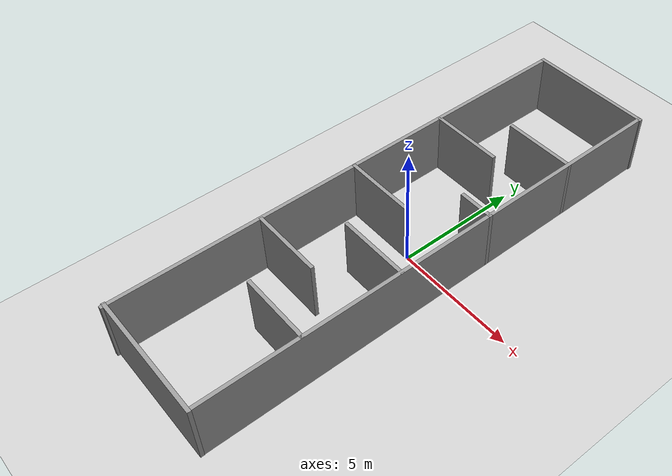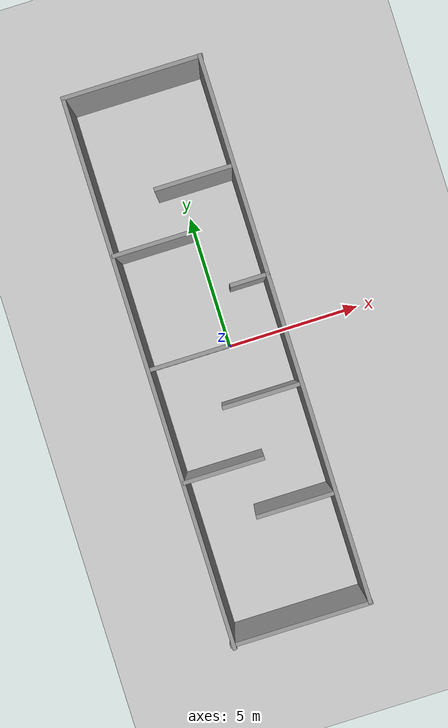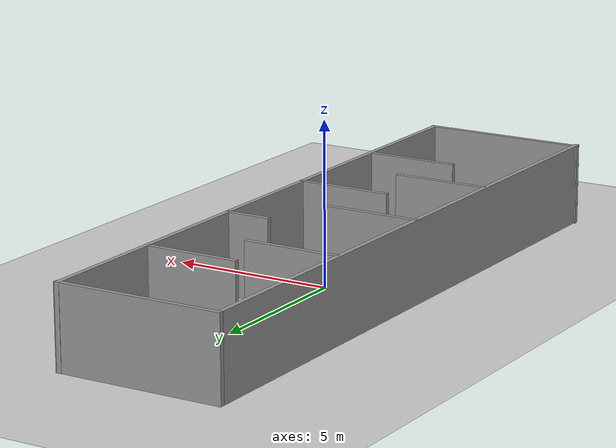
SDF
<sdf version="1.6">
 <world name="default">
  <light name="sun" type="directional">
   <pose>0 0 10 0 -0 0</pose>
   <diffuse>0.8 0.8 0.8 1</diffuse>
   <specular>0.1 0.1 0.1 1</specular>
   <attenuation>
    <range>1000</range>
    <constant>0.9</constant>
    <linear>0.01</linear>
    <quadratic>0.001</quadratic>
   </attenuation>
   <direction>-0.5 0.5 -1</direction>
  </light>
  <model name="ground_plane">
   <static>1</static>
   <link name="link">
    <collision name="collision">
     <geometry><plane><normal>0 0 1</normal><size>100 100</size></plane></geometry>
     <surface><friction><ode><mu>100</mu><mu2>50</mu2></ode></friction></surface>
    </collision>
    <visual name="visual">
     <cast_shadows>0</cast_shadows>
     <geometry><plane><normal>0 0 1</normal><size>100 100</size></plane></geometry>
     <material>
      <script><uri>file://media/materials/scripts/gazebo.material</uri><name>Gazebo/Grey</name></script>
     </material>
    </visual>
   </link>
  </model>
  <gravity>0 0 -9.8</gravity>
  <magnetic_field>6e-06 2.3e-05 -4.2e-05</magnetic_field>
  <atmosphere type="adiabatic"/>
  <physics name="default_physics" default="0" type="ode">
   <max_step_size>0.001</max_step_size>
   <real_time_factor>1</real_time_factor>
   <real_time_update_rate>1000</real_time_update_rate>
  </physics>
  <scene><ambient>0.4 0.4 0.4 1</ambient><background>0.7 0.7 0.7 1</background><shadows>1</shadows></scene>
  <spherical_coordinates>
   <surface_model>EARTH_WGS84</surface_model>
   <latitude_deg>0</latitude_deg>
   <longitude_deg>0</longitude_deg>
   <elevation>0</elevation>
   <heading_deg>0</heading_deg>
  </spherical_coordinates>
  <model name="Worst_Case_Communications">
   <link name="Wall_0">
    <pose>2 0 0 0 -0 1.5708</pose>
    <visual name="Wall_0_Visual">
     <pose>0 0 1.25 0 -0 0</pose>
     <geometry><box><size>20.15 0.15 2.5</size></box></geometry>
     <material>
      <script><uri>file://media/materials/scripts/gazebo.material</uri><name>Gazebo/Grey</name></script>
      <ambient>1 1 1 1</ambient>
      <shader type="pixel"/>
      <diffuse>0.7 0.7 0.7 1</diffuse>
      <specular>0.01 0.01 0.01 1</specular>
      <emissive>0 0 0 1</emissive>
     </material>
    </visual>
    <collision name="Wall_0_Collision">
     <pose>0 0 1.25 0 -0 0</pose>
     <geometry><box><size>20.15 0.15 2.5</size></box></geometry>
     <surface>
      <friction>
       <ode><mu>1</mu><mu2>1</mu2><fdir1>0 0 0</fdir1><slip1>0</slip1><slip2>0</slip2></ode>
       <torsional>
        <coefficient>1</coefficient>
        <patch_radius>0</patch_radius>
        <surface_radius>0</surface_radius>
        <use_patch_radius>1</use_patch_radius>
        <ode><slip>0</slip></ode>
       </torsional>
      </friction>
      <bounce><restitution_coefficient>0</restitution_coefficient><threshold>1e+06</threshold></bounce>
      <contact>
       <collide_without_contact>0</collide_without_contact>
       <collide_without_contact_bitmask>1</collide_without_contact_bitmask>
       <collide_bitmask>1</collide_bitmask>
       <ode>
        <soft_cfm>0</soft_cfm>
        <soft_erp>0.2</soft_erp>
        <kp>1e+13</kp>
        <kd>1</kd>
        <max_vel>0.01</max_vel>
        <min_depth>0</min_depth>
       </ode>
       <bullet>
        <split_impulse>1</split_impulse>
        <split_impulse_penetration_threshold>-0.01</split_impulse_penetration_threshold>
        <soft_cfm>0</soft_cfm>
        <soft_erp>0.2</soft_erp>
        <kp>1e+13</kp>
        <kd>1</kd>
       </bullet>
      </contact>
     </surface>
    </collision>
   </link>
   <link name="Wall_10">
    <pose>-1.52536 -4.10122 0 0 -0 0</pose>
    <visual name="Wall_10_Visual">
     <pose>0 0 1.25 0 -0 0</pose>
     <geometry><box><size>3 0.15 2.5</size></box></geometry>
     <material>
      <script><uri>file://media/materials/scripts/gazebo.material</uri><name>Gazebo/Grey</name></script>
      <ambient>1 1 1 1</ambient>
      <shader type="pixel"/>
      <diffuse>0.7 0.7 0.7 1</diffuse>
      <specular>0.01 0.01 0.01 1</specular>
      <emissive>0 0 0 1</emissive>
     </material>
    </visual>
    <collision name="Wall_10_Collision">
     <pose>0 0 1.25 0 -0 0</pose>
     <geometry><box><size>3 0.15 2.5</size></box></geometry>
     <surface>
      <friction>
       <ode><mu>1</mu><mu2>1</mu2><fdir1>0 0 0</fdir1><slip1>0</slip1><slip2>0</slip2></ode>
       <torsional>
        <coefficient>1</coefficient>
        <patch_radius>0</patch_radius>
        <surface_radius>0</surface_radius>
        <use_patch_radius>1</use_patch_radius>
        <ode><slip>0</slip></ode>
       </torsional>
      </friction>
      <bounce><restitution_coefficient>0</restitution_coefficient><threshold>1e+06</threshold></bounce>
      <contact>
       <collide_without_contact>0</collide_without_contact>
       <collide_without_contact_bitmask>1</collide_without_contact_bitmask>
       <collide_bitmask>1</collide_bitmask>
       <ode>
        <soft_cfm>0</soft_cfm>
        <soft_erp>0.2</soft_erp>
        <kp>1e+13</kp>
        <kd>1</kd>
        <max_vel>0.01</max_vel>
        <min_depth>0</min_depth>
       </ode>
       <bullet>
        <split_impulse>1</split_impulse>
        <split_impulse_penetration_threshold>-0.01</split_impulse_penetration_threshold>
        <soft_cfm>0</soft_cfm>
        <soft_erp>0.2</soft_erp>
        <kp>1e+13</kp>
        <kd>1</kd>
       </bullet>
      </contact>
     </surface>
    </collision>
   </link>
   <link name="Wall_12">
    <pose>1.34347 2.00793 0 0 -0 3.14159</pose>
    <inertial>
     <inertia><ixx>0</ixx><ixy>0</ixy><ixz>0</ixz><iyy>0</iyy><iyz>0</iyz><izz>0</izz></inertia>
     <mass>0</mass>
    </inertial>
    <visual name="Wall_12_Visual">
     <pose>0 0 1.25 0 -0 0</pose>
     <geometry><box><size>1.46432 0.15 2.5</size></box></geometry>
     <material>
      <script><uri>file://media/materials/scripts/gazebo.material</uri><name>Gazebo/Grey</name></script>
      <ambient>1 1 1 1</ambient>
      <shader type="pixel"/>
      <diffuse>0.7 0.7 0.7 1</diffuse>
      <specular>0.01 0.01 0.01 1</specular>
      <emissive>0 0 0 1</emissive>
     </material>
    </visual>
    <collision name="Wall_12_Collision">
     <pose>0 0 1.25 0 -0 0</pose>
     <geometry><box><size>1.46432 0.15 2.5</size></box></geometry>
     <surface>
      <friction>
       <ode><mu>1</mu><mu2>1</mu2><fdir1>0 0 0</fdir1><slip1>0</slip1><slip2>0</slip2></ode>
       <torsional>
        <coefficient>1</coefficient>
        <patch_radius>0</patch_radius>
        <surface_radius>0</surface_radius>
        <use_patch_radius>1</use_patch_radius>
        <ode><slip>0</slip></ode>
       </torsional>
      </friction>
      <bounce><restitution_coefficient>0</restitution_coefficient><threshold>1e+06</threshold></bounce>
      <contact>
       <collide_without_contact>0</collide_without_contact>
       <collide_without_contact_bitmask>1</collide_without_contact_bitmask>
       <collide_bitmask>1</collide_bitmask>
       <ode>
        <soft_cfm>0</soft_cfm>
        <soft_erp>0.2</soft_erp>
        <kp>1e+13</kp>
        <kd>1</kd>
        <max_vel>0.01</max_vel>
        <min_depth>0</min_depth>
       </ode>
       <bullet>
        <split_impulse>1</split_impulse>
        <split_impulse_penetration_threshold>-0.01</split_impulse_penetration_threshold>
        <soft_cfm>0</soft_cfm>
        <soft_erp>0.2</soft_erp>
        <kp>1e+13</kp>
        <kd>1</kd>
       </bullet>
      </contact>
     </surface>
    </collision>
   </link>
   <link name="Wall_14">
    <pose>-1.52951 4.20523 0 0 -0 0</pose>
    <visual name="Wall_14_Visual">
     <pose>0 0 1.25 0 -0 0</pose>
     <geometry><box><size>3 0.15 2.5</size></box></geometry>
     <material>
      <script><uri>file://media/materials/scripts/gazebo.material</uri><name>Gazebo/Grey</name></script>
      <ambient>1 1 1 1</ambient>
      <shader type="pixel"/>
      <diffuse>0.7 0.7 0.7 1</diffuse>
      <specular>0.01 0.01 0.01 1</specular>
      <emissive>0 0 0 1</emissive>
     </material>
    </visual>
    <collision name="Wall_14_Collision">
     <pose>0 0 1.25 0 -0 0</pose>
     <geometry><box><size>3 0.15 2.5</size></box></geometry>
     <surface>
      <friction>
       <ode><mu>1</mu><mu2>1</mu2><fdir1>0 0 0</fdir1><slip1>0</slip1><slip2>0</slip2></ode>
       <torsional>
        <coefficient>1</coefficient>
        <patch_radius>0</patch_radius>
        <surface_radius>0</surface_radius>
        <use_patch_radius>1</use_patch_radius>
        <ode><slip>0</slip></ode>
       </torsional>
      </friction>
      <bounce><restitution_coefficient>0</restitution_coefficient><threshold>1e+06</threshold></bounce>
      <contact>
       <collide_without_contact>0</collide_without_contact>
       <collide_without_contact_bitmask>1</collide_without_contact_bitmask>
       <collide_bitmask>1</collide_bitmask>
       <ode>
        <soft_cfm>0</soft_cfm>
        <soft_erp>0.2</soft_erp>
        <kp>1e+13</kp>
        <kd>1</kd>
        <max_vel>0.01</max_vel>
        <min_depth>0</min_depth>
       </ode>
       <bullet>
        <split_impulse>1</split_impulse>
        <split_impulse_penetration_threshold>-0.01</split_impulse_penetration_threshold>
        <soft_cfm>0</soft_cfm>
        <soft_erp>0.2</soft_erp>
        <kp>1e+13</kp>
        <kd>1</kd>
       </bullet>
      </contact>
     </surface>
    </collision>
   </link>
   <link name="Wall_2">
    <pose>-3.01299 -0.134804 0 0 -0 1.5708</pose>
    <visual name="Wall_2_Visual">
     <pose>0 0 1.25 0 -0 0</pose>
     <geometry><box><size>20.15 0.15 2.5</size></box></geometry>
     <material>
      <script><uri>file://media/materials/scripts/gazebo.material</uri><name>Gazebo/Grey</name></script>
      <ambient>1 1 1 1</ambient>
      <shader type="pixel"/>
      <diffuse>0.7 0.7 0.7 1</diffuse>
      <specular>0.01 0.01 0.01 1</specular>
      <emissive>0 0 0 1</emissive>
     </material>
    </visual>
    <collision name="Wall_2_Collision">
     <pose>0 0 1.25 0 -0 0</pose>
     <geometry><box><size>20.15 0.15 2.5</size></box></geometry>
     <surface>
      <friction>
       <ode><mu>1</mu><mu2>1</mu2><fdir1>0 0 0</fdir1><slip1>0</slip1><slip2>0</slip2></ode>
       <torsional>
        <coefficient>1</coefficient>
        <patch_radius>0</patch_radius>
        <surface_radius>0</surface_radius>
        <use_patch_radius>1</use_patch_radius>
        <ode><slip>0</slip></ode>
       </torsional>
      </friction>
      <bounce><restitution_coefficient>0</restitution_coefficient><threshold>1e+06</threshold></bounce>
      <contact>
       <collide_without_contact>0</collide_without_contact>
       <collide_without_contact_bitmask>1</collide_without_contact_bitmask>
       <collide_bitmask>1</collide_bitmask>
       <ode>
        <soft_cfm>0</soft_cfm>
        <soft_erp>0.2</soft_erp>
        <kp>1e+13</kp>
        <kd>1</kd>
        <max_vel>0.01</max_vel>
        <min_depth>0</min_depth>
       </ode>
       <bullet>
        <split_impulse>1</split_impulse>
        <split_impulse_penetration_threshold>-0.01</split_impulse_penetration_threshold>
        <soft_cfm>0</soft_cfm>
        <soft_erp>0.2</soft_erp>
        <kp>1e+13</kp>
        <kd>1</kd>
       </bullet>
      </contact>
     </surface>
    </collision>
   </link>
   <link name="Wall_27">
    <pose>0.575 6 0 0 -0 3.14159</pose>
    <visual name="Wall_27_Visual">
     <pose>0 0 1.25 0 -0 0</pose>
     <geometry><box><size>3 0.15 2.5</size></box></geometry>
     <material>
      <script><uri>file://media/materials/scripts/gazebo.material</uri><name>Gazebo/Grey</name></script>
      <ambient>1 1 1 1</ambient>
      <shader type="pixel"/>
      <diffuse>0.7 0.7 0.7 1</diffuse>
      <specular>0.01 0.01 0.01 1</specular>
      <emissive>0 0 0 1</emissive>
     </material>
    </visual>
    <collision name="Wall_27_Collision">
     <pose>0 0 1.25 0 -0 0</pose>
     <geometry><box><size>3 0.15 2.5</size></box></geometry>
     <surface>
      <friction>
       <ode><mu>1</mu><mu2>1</mu2><fdir1>0 0 0</fdir1><slip1>0</slip1><slip2>0</slip2></ode>
       <torsional>
        <coefficient>1</coefficient>
        <patch_radius>0</patch_radius>
        <surface_radius>0</surface_radius>
        <use_patch_radius>1</use_patch_radius>
        <ode><slip>0</slip></ode>
       </torsional>
      </friction>
      <bounce><restitution_coefficient>0</restitution_coefficient><threshold>1e+06</threshold></bounce>
      <contact>
       <collide_without_contact>0</collide_without_contact>
       <collide_without_contact_bitmask>1</collide_without_contact_bitmask>
       <collide_bitmask>1</collide_bitmask>
       <ode>
        <soft_cfm>0</soft_cfm>
        <soft_erp>0.2</soft_erp>
        <kp>1e+13</kp>
        <kd>1</kd>
        <max_vel>0.01</max_vel>
        <min_depth>0</min_depth>
       </ode>
       <bullet>
        <split_impulse>1</split_impulse>
        <split_impulse_penetration_threshold>-0.01</split_impulse_penetration_threshold>
        <soft_cfm>0</soft_cfm>
        <soft_erp>0.2</soft_erp>
        <kp>1e+13</kp>
        <kd>1</kd>
       </bullet>
      </contact>
     </surface>
    </collision>
   </link>
   <link name="Wall_29">
    <pose>0.575 -6 0 0 -0 3.14159</pose>
    <visual name="Wall_29_Visual">
     <pose>0 0 1.25 0 -0 0</pose>
     <geometry><box><size>3 0.15 2.5</size></box></geometry>
     <material>
      <script><uri>file://media/materials/scripts/gazebo.material</uri><name>Gazebo/Grey</name></script>
      <ambient>1 1 1 1</ambient>
      <shader type="pixel"/>
      <diffuse>0.7 0.7 0.7 1</diffuse>
      <specular>0.01 0.01 0.01 1</specular>
      <emissive>0 0 0 1</emissive>
     </material>
    </visual>
    <collision name="Wall_29_Collision">
     <pose>0 0 1.25 0 -0 0</pose>
     <geometry><box><size>3 0.15 2.5</size></box></geometry>
     <surface>
      <friction>
       <ode><mu>1</mu><mu2>1</mu2><fdir1>0 0 0</fdir1><slip1>0</slip1><slip2>0</slip2></ode>
       <torsional>
        <coefficient>1</coefficient>
        <patch_radius>0</patch_radius>
        <surface_radius>0</surface_radius>
        <use_patch_radius>1</use_patch_radius>
        <ode><slip>0</slip></ode>
       </torsional>
      </friction>
      <bounce><restitution_coefficient>0</restitution_coefficient><threshold>1e+06</threshold></bounce>
      <contact>
       <collide_without_contact>0</collide_without_contact>
       <collide_without_contact_bitmask>1</collide_without_contact_bitmask>
       <collide_bitmask>1</collide_bitmask>
       <ode>
        <soft_cfm>0</soft_cfm>
        <soft_erp>0.2</soft_erp>
        <kp>1e+13</kp>
        <kd>1</kd>
        <max_vel>0.01</max_vel>
        <min_depth>0</min_depth>
       </ode>
       <bullet>
        <split_impulse>1</split_impulse>
        <split_impulse_penetration_threshold>-0.01</split_impulse_penetration_threshold>
        <soft_cfm>0</soft_cfm>
        <soft_erp>0.2</soft_erp>
        <kp>1e+13</kp>
        <kd>1</kd>
       </bullet>
      </contact>
     </surface>
    </collision>
   </link>
   <link name="Wall_31">
    <pose>-0.520813 -10.0353 0 0 -0 0</pose>
    <inertial>
     <inertia><ixx>0</ixx><ixy>0</ixy><ixz>0</ixz><iyy>0</iyy><iyz>0</iyz><izz>0</izz></inertia>
     <mass>0</mass>
    </inertial>
    <visual name="Wall_31_Visual">
     <pose>0 0 1.25 0 -0 0</pose>
     <geometry><box><size>5.22429 0.15 2.5</size></box></geometry>
     <material>
      <script><uri>file://media/materials/scripts/gazebo.material</uri><name>Gazebo/Grey</name></script>
      <ambient>1 1 1 1</ambient>
      <shader type="pixel"/>
      <diffuse>0.7 0.7 0.7 1</diffuse>
      <specular>0.01 0.01 0.01 1</specular>
      <emissive>0 0 0 1</emissive>
     </material>
    </visual>
    <collision name="Wall_31_Collision">
     <pose>0 0 1.25 0 -0 0</pose>
     <geometry><box><size>5.22429 0.15 2.5</size></box></geometry>
     <surface>
      <friction>
       <ode><mu>1</mu><mu2>1</mu2><fdir1>0 0 0</fdir1><slip1>0</slip1><slip2>0</slip2></ode>
       <torsional>
        <coefficient>1</coefficient>
        <patch_radius>0</patch_radius>
        <surface_radius>0</surface_radius>
        <use_patch_radius>1</use_patch_radius>
        <ode><slip>0</slip></ode>
       </torsional>
      </friction>
      <bounce><restitution_coefficient>0</restitution_coefficient><threshold>1e+06</threshold></bounce>
      <contact>
       <collide_without_contact>0</collide_without_contact>
       <collide_without_contact_bitmask>1</collide_without_contact_bitmask>
       <collide_bitmask>1</collide_bitmask>
       <ode>
        <soft_cfm>0</soft_cfm>
        <soft_erp>0.2</soft_erp>
        <kp>1e+13</kp>
        <kd>1</kd>
        <max_vel>0.01</max_vel>
        <min_depth>0</min_depth>
       </ode>
       <bullet>
        <split_impulse>1</split_impulse>
        <split_impulse_penetration_threshold>-0.01</split_impulse_penetration_threshold>
        <soft_cfm>0</soft_cfm>
        <soft_erp>0.2</soft_erp>
        <kp>1e+13</kp>
        <kd>1</kd>
       </bullet>
      </contact>
     </surface>
    </collision>
   </link>
   <link name="Wall_33">
    <pose>-0.492539 9.99424 0 0 -0 0</pose>
    <inertial>
     <inertia><ixx>0</ixx><ixy>0</ixy><ixz>0</ixz><iyy>0</iyy><iyz>0</iyz><izz>0</izz></inertia>
     <mass>0</mass>
    </inertial>
    <visual name="Wall_33_Visual">
     <pose>0 0 1.25 0 -0 0</pose>
     <geometry><box><size>5.19544 0.15 2.5</size></box></geometry>
     <material>
      <script><uri>file://media/materials/scripts/gazebo.material</uri><name>Gazebo/Grey</name></script>
      <ambient>1 1 1 1</ambient>
      <shader type="pixel"/>
      <diffuse>0.7 0.7 0.7 1</diffuse>
      <specular>0.01 0.01 0.01 1</specular>
      <emissive>0 0 0 1</emissive>
     </material>
    </visual>
    <collision name="Wall_33_Collision">
     <pose>0 0 1.25 0 -0 0</pose>
     <geometry><box><size>5.19544 0.15 2.5</size></box></geometry>
     <surface>
      <friction>
       <ode><mu>1</mu><mu2>1</mu2><fdir1>0 0 0</fdir1><slip1>0</slip1><slip2>0</slip2></ode>
       <torsional>
        <coefficient>1</coefficient>
        <patch_radius>0</patch_radius>
        <surface_radius>0</surface_radius>
        <use_patch_radius>1</use_patch_radius>
        <ode><slip>0</slip></ode>
       </torsional>
      </friction>
      <bounce><restitution_coefficient>0</restitution_coefficient><threshold>1e+06</threshold></bounce>
      <contact>
       <collide_without_contact>0</collide_without_contact>
       <collide_without_contact_bitmask>1</collide_without_contact_bitmask>
       <collide_bitmask>1</collide_bitmask>
       <ode>
        <soft_cfm>0</soft_cfm>
        <soft_erp>0.2</soft_erp>
        <kp>1e+13</kp>
        <kd>1</kd>
        <max_vel>0.01</max_vel>
        <min_depth>0</min_depth>
       </ode>
       <bullet>
        <split_impulse>1</split_impulse>
        <split_impulse_penetration_threshold>-0.01</split_impulse_penetration_threshold>
        <soft_cfm>0</soft_cfm>
        <soft_erp>0.2</soft_erp>
        <kp>1e+13</kp>
        <kd>1</kd>
       </bullet>
      </contact>
     </surface>
    </collision>
   </link>
   <link name="Wall_6">
    <pose>0.575 -2 0 0 -0 3.14159</pose>
    <visual name="Wall_6_Visual">
     <pose>0 0 1.25 0 -0 0</pose>
     <geometry><box><size>3 0.15 2.5</size></box></geometry>
     <material>
      <script><uri>file://media/materials/scripts/gazebo.material</uri><name>Gazebo/Grey</name></script>
      <ambient>1 1 1 1</ambient>
      <shader type="pixel"/>
      <diffuse>0.7 0.7 0.7 1</diffuse>
      <specular>0.01 0.01 0.01 1</specular>
      <emissive>0 0 0 1</emissive>
     </material>
    </visual>
    <collision name="Wall_6_Collision">
     <pose>0 0 1.25 0 -0 0</pose>
     <geometry><box><size>3 0.15 2.5</size></box></geometry>
     <surface>
      <friction>
       <ode><mu>1</mu><mu2>1</mu2><fdir1>0 0 0</fdir1><slip1>0</slip1><slip2>0</slip2></ode>
       <torsional>
        <coefficient>1</coefficient>
        <patch_radius>0</patch_radius>
        <surface_radius>0</surface_radius>
        <use_patch_radius>1</use_patch_radius>
        <ode><slip>0</slip></ode>
       </torsional>
      </friction>
      <bounce><restitution_coefficient>0</restitution_coefficient><threshold>1e+06</threshold></bounce>
      <contact>
       <collide_without_contact>0</collide_without_contact>
       <collide_without_contact_bitmask>1</collide_without_contact_bitmask>
       <collide_bitmask>1</collide_bitmask>
       <ode>
        <soft_cfm>0</soft_cfm>
        <soft_erp>0.2</soft_erp>
        <kp>1e+13</kp>
        <kd>1</kd>
        <max_vel>0.01</max_vel>
        <min_depth>0</min_depth>
       </ode>
       <bullet>
        <split_impulse>1</split_impulse>
        <split_impulse_penetration_threshold>-0.01</split_impulse_penetration_threshold>
        <soft_cfm>0</soft_cfm>
        <soft_erp>0.2</soft_erp>
        <kp>1e+13</kp>
        <kd>1</kd>
       </bullet>
      </contact>
     </surface>
    </collision>
   </link>
   <link name="Wall_8">
    <pose>-1.55793 0.021159 0 0 -0 0</pose>
    <visual name="Wall_8_Visual">
     <pose>0 0 1.25 0 -0 0</pose>
     <geometry><box><size>3 0.15 2.5</size></box></geometry>
     <material>
      <script><uri>file://media/materials/scripts/gazebo.material</uri><name>Gazebo/Grey</name></script>
      <ambient>1 1 1 1</ambient>
      <shader type="pixel"/>
      <diffuse>0.7 0.7 0.7 1</diffuse>
      <specular>0.01 0.01 0.01 1</specular>
      <emissive>0 0 0 1</emissive>
     </material>
    </visual>
    <collision name="Wall_8_Collision">
     <pose>0 0 1.25 0 -0 0</pose>
     <geometry><box><size>3 0.15 2.5</size></box></geometry>
     <surface>
      <friction>
       <ode><mu>1</mu><mu2>1</mu2><fdir1>0 0 0</fdir1><slip1>0</slip1><slip2>0</slip2></ode>
       <torsional>
        <coefficient>1</coefficient>
        <patch_radius>0</patch_radius>
        <surface_radius>0</surface_radius>
        <use_patch_radius>1</use_patch_radius>
        <ode><slip>0</slip></ode>
       </torsional>
      </friction>
      <bounce><restitution_coefficient>0</restitution_coefficient><threshold>1e+06</threshold></bounce>
      <contact>
       <collide_without_contact>0</collide_without_contact>
       <collide_without_contact_bitmask>1</collide_without_contact_bitmask>
       <collide_bitmask>1</collide_bitmask>
       <ode>
        <soft_cfm>0</soft_cfm>
        <soft_erp>0.2</soft_erp>
        <kp>1e+13</kp>
        <kd>1</kd>
        <max_vel>0.01</max_vel>
        <min_depth>0</min_depth>
       </ode>
       <bullet>
        <split_impulse>1</split_impulse>
        <split_impulse_penetration_threshold>-0.01</split_impulse_penetration_threshold>
        <soft_cfm>0</soft_cfm>
        <soft_erp>0.2</soft_erp>
        <kp>1e+13</kp>
        <kd>1</kd>
       </bullet>
      </contact>
     </surface>
    </collision>
   </link>
   <static>1</static>
  </model>
 </world>
</sdf>
